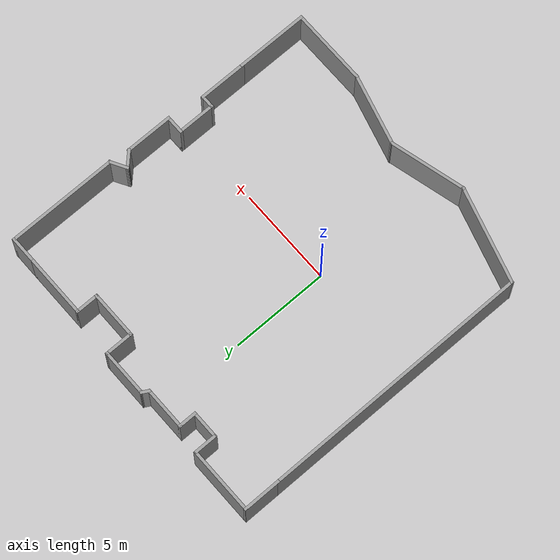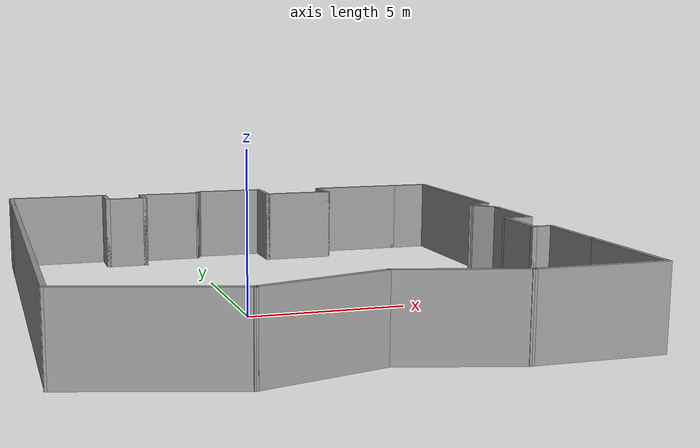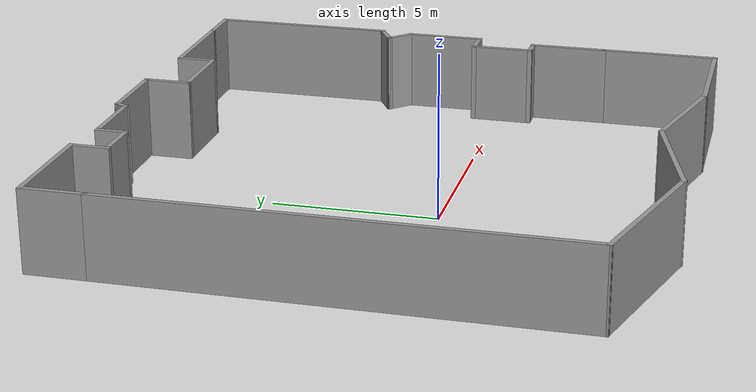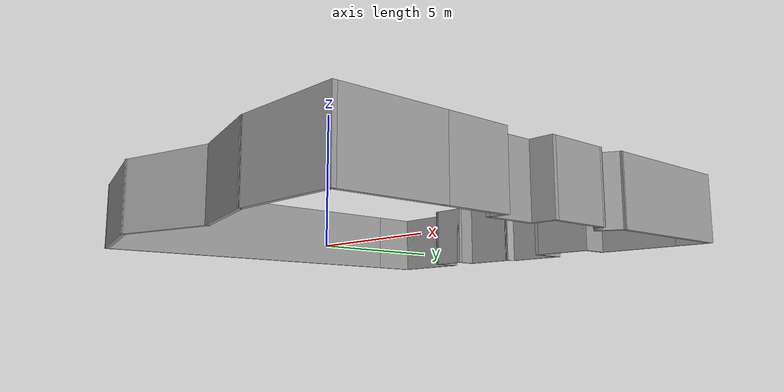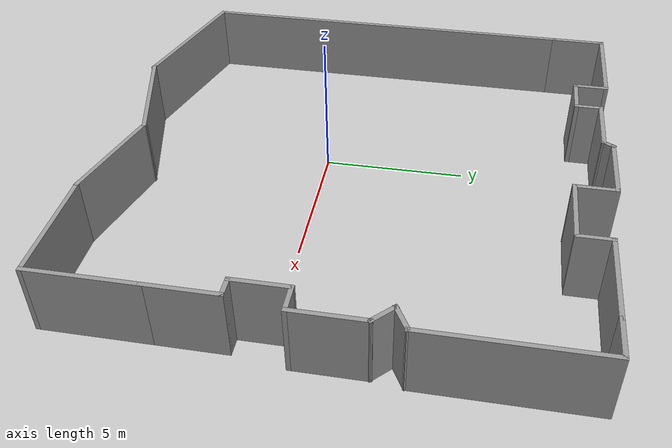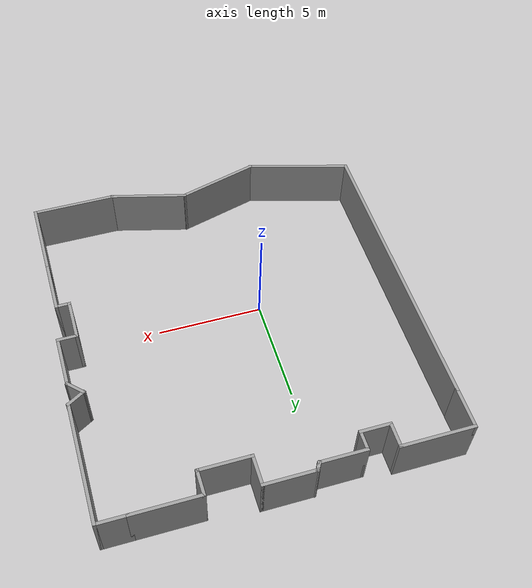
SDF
<?xml version='1.0'?>
<sdf version='1.6'>
  <model name='workplace'>
    <pose frame=''>1.75556 1.47465 0 0 -0 0</pose>
    <link name='Wall_36'>
      <collision name='Wall_36_Collision'>
        <geometry>
          <box>
            <size>14 0.15 2.5</size>
          </box>
        </geometry>
        <pose frame=''>0 0 1.25 0 -0 0</pose>
      </collision>
      <visual name='Wall_36_Visual'>
        <pose frame=''>0 0 1.25 0 -0 0</pose>
        <geometry>
          <box>
            <size>14 0.15 2.5</size>
          </box>
        </geometry>
        <material>
          <script>
            <uri>file://media/materials/scripts/gazebo.material</uri>
            <name>Gazebo/Grey</name>
          </script>
          <ambient>1 1 1 1</ambient>
        </material>
        <meta>
          <layer>0</layer>
        </meta>
      </visual>
      <pose frame=''>-8.06738 -0.28762 0 0 -0 1.5708</pose>
    </link>
    <link name='Wall_37'>
      <collision name='Wall_37_Collision'>
        <geometry>
          <box>
            <size>2 0.15 2.5</size>
          </box>
        </geometry>
        <pose frame=''>0 0 1.25 0 -0 0</pose>
      </collision>
      <visual name='Wall_37_Visual'>
        <pose frame=''>0 0 1.25 0 -0 0</pose>
        <geometry>
          <box>
            <size>2 0.15 2.5</size>
          </box>
        </geometry>
        <material>
          <script>
            <uri>file://media/materials/scripts/gazebo.material</uri>
            <name>Gazebo/Grey</name>
          </script>
          <ambient>1 1 1 1</ambient>
        </material>
        <meta>
          <layer>0</layer>
        </meta>
      </visual>
      <pose frame=''>-8.06738 7.56238 0 0 -0 1.5708</pose>
    </link>
    <link name='Wall_38'>
      <collision name='Wall_38_Collision'>
        <geometry>
          <box>
            <size>3.5 0.15 2.5</size>
          </box>
        </geometry>
        <pose frame=''>0 0 1.25 0 -0 0</pose>
      </collision>
      <visual name='Wall_38_Visual'>
        <pose frame=''>0 0 1.25 0 -0 0</pose>
        <geometry>
          <box>
            <size>3.5 0.15 2.5</size>
          </box>
        </geometry>
        <material>
          <script>
            <uri>file://media/materials/scripts/gazebo.material</uri>
            <name>Gazebo/Grey</name>
          </script>
          <ambient>1 1 1 1</ambient>
        </material>
        <meta>
          <layer>0</layer>
        </meta>
      </visual>
      <pose frame=''>-6.39238 8.48738 0 0 -0 0</pose>
    </link>
    <link name='Wall_39'>
      <collision name='Wall_39_Collision'>
        <geometry>
          <box>
            <size>1.25 0.15 2.5</size>
          </box>
        </geometry>
        <pose frame=''>0 0 1.25 0 -0 0</pose>
      </collision>
      <visual name='Wall_39_Visual'>
        <pose frame=''>0 0 1.25 0 -0 0</pose>
        <geometry>
          <box>
            <size>1.25 0.15 2.5</size>
          </box>
        </geometry>
        <material>
          <script>
            <uri>file://media/materials/scripts/gazebo.material</uri>
            <name>Gazebo/Grey</name>
          </script>
          <ambient>1 1 1 1</ambient>
        </material>
        <meta>
          <layer>0</layer>
        </meta>
      </visual>
      <pose frame=''>-4.71739 7.93738 0 0 -0 -1.5708</pose>
    </link>
    <link name='Wall_40'>
      <collision name='Wall_40_Collision'>
        <geometry>
          <box>
            <size>1.5 0.15 2.5</size>
          </box>
        </geometry>
        <pose frame=''>0 0 1.25 0 -0 0</pose>
      </collision>
      <visual name='Wall_40_Visual'>
        <pose frame=''>0 0 1.25 0 -0 0</pose>
        <geometry>
          <box>
            <size>1.5 0.15 2.5</size>
          </box>
        </geometry>
        <material>
          <script>
            <uri>file://media/materials/scripts/gazebo.material</uri>
            <name>Gazebo/Grey</name>
          </script>
          <ambient>1 1 1 1</ambient>
        </material>
        <meta>
          <layer>0</layer>
        </meta>
      </visual>
      <pose frame=''>-4.04238 7.38738 0 0 -0 0</pose>
    </link>
    <link name='Wall_41'>
      <collision name='Wall_41_Collision'>
        <geometry>
          <box>
            <size>1 0.15 2.5</size>
          </box>
        </geometry>
        <pose frame=''>0 0 1.25 0 -0 0</pose>
      </collision>
      <visual name='Wall_41_Visual'>
        <pose frame=''>0 0 1.25 0 -0 0</pose>
        <geometry>
          <box>
            <size>1 0.15 2.5</size>
          </box>
        </geometry>
        <material>
          <script>
            <uri>file://media/materials/scripts/gazebo.material</uri>
            <name>Gazebo/Grey</name>
          </script>
          <ambient>1 1 1 1</ambient>
        </material>
        <meta>
          <layer>0</layer>
        </meta>
      </visual>
      <pose frame=''>-3.36739 7.81238 0 0 -0 1.5708</pose>
    </link>
    <link name='Wall_42'>
      <collision name='Wall_42_Collision'>
        <geometry>
          <box>
            <size>2.25 0.15 2.5</size>
          </box>
        </geometry>
        <pose frame=''>0 0 1.25 0 -0 0</pose>
      </collision>
      <visual name='Wall_42_Visual'>
        <pose frame=''>0 0 1.25 0 -0 0</pose>
        <geometry>
          <box>
            <size>2.25 0.15 2.5</size>
          </box>
        </geometry>
        <material>
          <script>
            <uri>file://media/materials/scripts/gazebo.material</uri>
            <name>Gazebo/Grey</name>
          </script>
          <ambient>1 1 1 1</ambient>
        </material>
        <meta>
          <layer>0</layer>
        </meta>
      </visual>
      <pose frame=''>-2.31738 8.23738 0 0 -0 0</pose>
    </link>
    <link name='Wall_43'>
      <collision name='Wall_43_Collision'>
        <geometry>
          <box>
            <size>0.5 0.15 2.5</size>
          </box>
        </geometry>
        <pose frame=''>0 0 1.25 0 -0 0</pose>
      </collision>
      <visual name='Wall_43_Visual'>
        <pose frame=''>0 0 1.25 0 -0 0</pose>
        <geometry>
          <box>
            <size>0.5 0.15 2.5</size>
          </box>
        </geometry>
        <material>
          <script>
            <uri>file://media/materials/scripts/gazebo.material</uri>
            <name>Gazebo/Grey</name>
          </script>
          <ambient>1 1 1 1</ambient>
        </material>
        <meta>
          <layer>0</layer>
        </meta>
      </visual>
      <pose frame=''>-1.17988 8.38893 0 0 -0 1.0472</pose>
    </link>
    <link name='Wall_44'>
      <collision name='Wall_44_Collision'>
        <geometry>
          <box>
            <size>2.5 0.15 2.5</size>
          </box>
        </geometry>
        <pose frame=''>0 0 1.25 0 -0 0</pose>
      </collision>
      <visual name='Wall_44_Visual'>
        <pose frame=''>0 0 1.25 0 -0 0</pose>
        <geometry>
          <box>
            <size>2.5 0.15 2.5</size>
          </box>
        </geometry>
        <material>
          <script>
            <uri>file://media/materials/scripts/gazebo.material</uri>
            <name>Gazebo/Grey</name>
          </script>
          <ambient>1 1 1 1</ambient>
        </material>
        <meta>
          <layer>0</layer>
        </meta>
      </visual>
      <pose frame=''>0.082615 8.54049 0 0 -0 0</pose>
    </link>
    <link name='Wall_45'>
      <collision name='Wall_45_Collision'>
        <geometry>
          <box>
            <size>1.5 0.15 2.5</size>
          </box>
        </geometry>
        <pose frame=''>0 0 1.25 0 -0 0</pose>
      </collision>
      <visual name='Wall_45_Visual'>
        <pose frame=''>0 0 1.25 0 -0 0</pose>
        <geometry>
          <box>
            <size>1.5 0.15 2.5</size>
          </box>
        </geometry>
        <material>
          <script>
            <uri>file://media/materials/scripts/gazebo.material</uri>
            <name>Gazebo/Grey</name>
          </script>
          <ambient>1 1 1 1</ambient>
        </material>
        <meta>
          <layer>0</layer>
        </meta>
      </visual>
      <pose frame=''>1.25762 7.86549 0 0 -0 -1.5708</pose>
    </link>
    <link name='Wall_46'>
      <collision name='Wall_46_Collision'>
        <geometry>
          <box>
            <size>2.5 0.15 2.5</size>
          </box>
        </geometry>
        <pose frame=''>0 0 1.25 0 -0 0</pose>
      </collision>
      <visual name='Wall_46_Visual'>
        <pose frame=''>0 0 1.25 0 -0 0</pose>
        <geometry>
          <box>
            <size>2.5 0.15 2.5</size>
          </box>
        </geometry>
        <material>
          <script>
            <uri>file://media/materials/scripts/gazebo.material</uri>
            <name>Gazebo/Grey</name>
          </script>
          <ambient>1 1 1 1</ambient>
        </material>
        <meta>
          <layer>0</layer>
        </meta>
      </visual>
      <pose frame=''>2.43262 7.19049 0 0 -0 0</pose>
    </link>
    <link name='Wall_47'>
      <collision name='Wall_47_Collision'>
        <geometry>
          <box>
            <size>1.25 0.15 2.5</size>
          </box>
        </geometry>
        <pose frame=''>0 0 1.25 0 -0 0</pose>
      </collision>
      <visual name='Wall_47_Visual'>
        <pose frame=''>0 0 1.25 0 -0 0</pose>
        <geometry>
          <box>
            <size>1.25 0.15 2.5</size>
          </box>
        </geometry>
        <material>
          <script>
            <uri>file://media/materials/scripts/gazebo.material</uri>
            <name>Gazebo/Grey</name>
          </script>
          <ambient>1 1 1 1</ambient>
        </material>
        <meta>
          <layer>0</layer>
        </meta>
      </visual>
      <pose frame=''>3.60762 7.74049 0 0 -0 1.5708</pose>
    </link>
    <link name='Wall_48'>
      <collision name='Wall_48_Collision'>
        <geometry>
          <box>
            <size>3.25 0.15 2.5</size>
          </box>
        </geometry>
        <pose frame=''>0 0 1.25 0 -0 0</pose>
      </collision>
      <visual name='Wall_48_Visual'>
        <pose frame=''>0 0 1.25 0 -0 0</pose>
        <geometry>
          <box>
            <size>3.25 0.15 2.5</size>
          </box>
        </geometry>
        <material>
          <script>
            <uri>file://media/materials/scripts/gazebo.material</uri>
            <name>Gazebo/Grey</name>
          </script>
          <ambient>1 1 1 1</ambient>
        </material>
        <meta>
          <layer>0</layer>
        </meta>
      </visual>
      <pose frame=''>5.15762 8.29049 0 0 -0 0</pose>
    </link>
    <link name='Wall_49'>
      <collision name='Wall_49_Collision'>
        <geometry>
          <box>
            <size>1.5 0.15 2.5</size>
          </box>
        </geometry>
        <pose frame=''>0 0 1.25 0 -0 0</pose>
      </collision>
      <visual name='Wall_49_Visual'>
        <pose frame=''>0 0 1.25 0 -0 0</pose>
        <geometry>
          <box>
            <size>1.5 0.15 2.5</size>
          </box>
        </geometry>
        <material>
          <script>
            <uri>file://media/materials/scripts/gazebo.material</uri>
            <name>Gazebo/Grey</name>
          </script>
          <ambient>1 1 1 1</ambient>
        </material>
        <meta>
          <layer>0</layer>
        </meta>
      </visual>
      <pose frame=''>7.38262 8.29049 0 0 -0 0</pose>
    </link>
    <link name='Wall_50'>
      <collision name='Wall_50_Collision'>
        <geometry>
          <box>
            <size>5.75 0.15 2.5</size>
          </box>
        </geometry>
        <pose frame=''>0 0 1.25 0 -0 0</pose>
      </collision>
      <visual name='Wall_50_Visual'>
        <pose frame=''>0 0 1.25 0 -0 0</pose>
        <geometry>
          <box>
            <size>5.75 0.15 2.5</size>
          </box>
        </geometry>
        <material>
          <script>
            <uri>file://media/materials/scripts/gazebo.material</uri>
            <name>Gazebo/Grey</name>
          </script>
          <ambient>1 1 1 1</ambient>
        </material>
        <meta>
          <layer>0</layer>
        </meta>
      </visual>
      <pose frame=''>8.05762 5.49049 0 0 -0 -1.5708</pose>
    </link>
    <link name='Wall_51'>
      <collision name='Wall_51_Collision'>
        <geometry>
          <box>
            <size>1 0.15 2.5</size>
          </box>
        </geometry>
        <pose frame=''>0 0 1.25 0 -0 0</pose>
      </collision>
      <visual name='Wall_51_Visual'>
        <pose frame=''>0 0 1.25 0 -0 0</pose>
        <geometry>
          <box>
            <size>1 0.15 2.5</size>
          </box>
        </geometry>
        <material>
          <script>
            <uri>file://media/materials/scripts/gazebo.material</uri>
            <name>Gazebo/Grey</name>
          </script>
          <ambient>1 1 1 1</ambient>
        </material>
        <meta>
          <layer>0</layer>
        </meta>
      </visual>
      <pose frame=''>7.68956 2.47799 0 0 -0 -2.61799</pose>
    </link>
    <link name='Wall_52'>
      <collision name='Wall_52_Collision'>
        <geometry>
          <box>
            <size>1 0.15 2.5</size>
          </box>
        </geometry>
        <pose frame=''>0 0 1.25 0 -0 0</pose>
      </collision>
      <visual name='Wall_52_Visual'>
        <pose frame=''>0 0 1.25 0 -0 0</pose>
        <geometry>
          <box>
            <size>1 0.15 2.5</size>
          </box>
        </geometry>
        <material>
          <script>
            <uri>file://media/materials/scripts/gazebo.material</uri>
            <name>Gazebo/Grey</name>
          </script>
          <ambient>1 1 1 1</ambient>
        </material>
        <meta>
          <layer>0</layer>
        </meta>
      </visual>
      <pose frame=''>7.62202 1.96497 0 0 -0 -0.785398</pose>
    </link>
    <link name='Wall_53'>
      <collision name='Wall_53_Collision'>
        <geometry>
          <box>
            <size>2.5 0.15 2.5</size>
          </box>
        </geometry>
        <pose frame=''>0 0 1.25 0 -0 0</pose>
      </collision>
      <visual name='Wall_53_Visual'>
        <pose frame=''>0 0 1.25 0 -0 0</pose>
        <geometry>
          <box>
            <size>2.5 0.15 2.5</size>
          </box>
        </geometry>
        <material>
          <script>
            <uri>file://media/materials/scripts/gazebo.material</uri>
            <name>Gazebo/Grey</name>
          </script>
          <ambient>1 1 1 1</ambient>
        </material>
        <meta>
          <layer>0</layer>
        </meta>
      </visual>
      <pose frame=''>7.92253 0.489448 0 0 -0 -1.5708</pose>
    </link>
    <link name='Wall_54'>
      <collision name='Wall_54_Collision'>
        <geometry>
          <box>
            <size>1 0.15 2.5</size>
          </box>
        </geometry>
        <pose frame=''>0 0 1.25 0 -0 0</pose>
      </collision>
      <visual name='Wall_54_Visual'>
        <pose frame=''>0 0 1.25 0 -0 0</pose>
        <geometry>
          <box>
            <size>1 0.15 2.5</size>
          </box>
        </geometry>
        <material>
          <script>
            <uri>file://media/materials/scripts/gazebo.material</uri>
            <name>Gazebo/Grey</name>
          </script>
          <ambient>1 1 1 1</ambient>
        </material>
        <meta>
          <layer>0</layer>
        </meta>
      </visual>
      <pose frame=''>7.49753 -0.685552 0 0 -0 3.14159</pose>
    </link>
    <link name='Wall_55'>
      <collision name='Wall_55_Collision'>
        <geometry>
          <box>
            <size>2 0.15 2.5</size>
          </box>
        </geometry>
        <pose frame=''>0 0 1.25 0 -0 0</pose>
      </collision>
      <visual name='Wall_55_Visual'>
        <pose frame=''>0 0 1.25 0 -0 0</pose>
        <geometry>
          <box>
            <size>2 0.15 2.5</size>
          </box>
        </geometry>
        <material>
          <script>
            <uri>file://media/materials/scripts/gazebo.material</uri>
            <name>Gazebo/Grey</name>
          </script>
          <ambient>1 1 1 1</ambient>
        </material>
        <meta>
          <layer>0</layer>
        </meta>
      </visual>
      <pose frame=''>7.07254 -1.61055 0 0 -0 -1.5708</pose>
    </link>
    <link name='Wall_56'>
      <collision name='Wall_56_Collision'>
        <geometry>
          <box>
            <size>0.75 0.15 2.5</size>
          </box>
        </geometry>
        <pose frame=''>0 0 1.25 0 -0 0</pose>
      </collision>
      <visual name='Wall_56_Visual'>
        <pose frame=''>0 0 1.25 0 -0 0</pose>
        <geometry>
          <box>
            <size>0.75 0.15 2.5</size>
          </box>
        </geometry>
        <material>
          <script>
            <uri>file://media/materials/scripts/gazebo.material</uri>
            <name>Gazebo/Grey</name>
          </script>
          <ambient>1 1 1 1</ambient>
        </material>
        <meta>
          <layer>0</layer>
        </meta>
      </visual>
      <pose frame=''>7.37253 -2.53555 0 0 -0 0</pose>
    </link>
    <link name='Wall_57'>
      <collision name='Wall_57_Collision'>
        <geometry>
          <box>
            <size>2.5 0.15 2.5</size>
          </box>
        </geometry>
        <pose frame=''>0 0 1.25 0 -0 0</pose>
      </collision>
      <visual name='Wall_57_Visual'>
        <pose frame=''>0 0 1.25 0 -0 0</pose>
        <geometry>
          <box>
            <size>2.5 0.15 2.5</size>
          </box>
        </geometry>
        <material>
          <script>
            <uri>file://media/materials/scripts/gazebo.material</uri>
            <name>Gazebo/Grey</name>
          </script>
          <ambient>1 1 1 1</ambient>
        </material>
        <meta>
          <layer>0</layer>
        </meta>
      </visual>
      <pose frame=''>7.67253 -3.71055 0 0 -0 -1.5708</pose>
    </link>
    <link name='Wall_58'>
      <collision name='Wall_58_Collision'>
        <geometry>
          <box>
            <size>3.75 0.15 2.5</size>
          </box>
        </geometry>
        <pose frame=''>0 0 1.25 0 -0 0</pose>
      </collision>
      <visual name='Wall_58_Visual'>
        <pose frame=''>0 0 1.25 0 -0 0</pose>
        <geometry>
          <box>
            <size>3.75 0.15 2.5</size>
          </box>
        </geometry>
        <material>
          <script>
            <uri>file://media/materials/scripts/gazebo.material</uri>
            <name>Gazebo/Grey</name>
          </script>
          <ambient>1 1 1 1</ambient>
        </material>
        <meta>
          <layer>0</layer>
        </meta>
      </visual>
      <pose frame=''>7.67253 -6.68555 0 0 -0 -1.5708</pose>
    </link>
    <link name='Wall_59'>
      <collision name='Wall_59_Collision'>
        <geometry>
          <box>
            <size>4 0.15 2.5</size>
          </box>
        </geometry>
        <pose frame=''>0 0 1.25 0 -0 0</pose>
      </collision>
      <visual name='Wall_59_Visual'>
        <pose frame=''>0 0 1.25 0 -0 0</pose>
        <geometry>
          <box>
            <size>4 0.15 2.5</size>
          </box>
        </geometry>
        <material>
          <script>
            <uri>file://media/materials/scripts/gazebo.material</uri>
            <name>Gazebo/Grey</name>
          </script>
          <ambient>1 1 1 1</ambient>
        </material>
        <meta>
          <layer>0</layer>
        </meta>
      </visual>
      <pose frame=''>5.74754 -8.48555 0 0 -0 3.14159</pose>
    </link>
    <link name='Wall_60'>
      <collision name='Wall_60_Collision'>
        <geometry>
          <box>
            <size>3.75 0.15 2.5</size>
          </box>
        </geometry>
        <pose frame=''>0 0 1.25 0 -0 0</pose>
      </collision>
      <visual name='Wall_60_Visual'>
        <pose frame=''>0 0 1.25 0 -0 0</pose>
        <geometry>
          <box>
            <size>3.75 0.15 2.5</size>
          </box>
        </geometry>
        <material>
          <script>
            <uri>file://media/materials/scripts/gazebo.material</uri>
            <name>Gazebo/Grey</name>
          </script>
          <ambient>1 1 1 1</ambient>
        </material>
        <meta>
          <layer>0</layer>
        </meta>
      </visual>
      <pose frame=''>2.08387 -8.01968 0 0 -0 2.87979</pose>
    </link>
    <link name='Wall_61'>
      <collision name='Wall_61_Collision'>
        <geometry>
          <box>
            <size>4 0.15 2.5</size>
          </box>
        </geometry>
        <pose frame=''>0 0 1.25 0 -0 0</pose>
      </collision>
      <visual name='Wall_61_Visual'>
        <pose frame=''>0 0 1.25 0 -0 0</pose>
        <geometry>
          <box>
            <size>4 0.15 2.5</size>
          </box>
        </geometry>
        <material>
          <script>
            <uri>file://media/materials/scripts/gazebo.material</uri>
            <name>Gazebo/Grey</name>
          </script>
          <ambient>1 1 1 1</ambient>
        </material>
        <meta>
          <layer>0</layer>
        </meta>
      </visual>
      <pose frame=''>-1.51421 -8.05203 0 0 -0 -2.87979</pose>
    </link>
    <link name='Wall_62'>
      <collision name='Wall_62_Collision'>
        <geometry>
          <box>
            <size>5.03065 0.15 2.5</size>
          </box>
        </geometry>
        <pose frame=''>0 0 1.25 0 -0 0</pose>
      </collision>
      <visual name='Wall_62_Visual'>
        <pose frame=''>0 0 1.25 0 -0 0</pose>
        <geometry>
          <box>
            <size>5.03065 0.15 2.5</size>
          </box>
        </geometry>
        <material>
          <script>
            <uri>file://media/materials/scripts/gazebo.material</uri>
            <name>Gazebo/Grey</name>
          </script>
          <ambient>1 1 1 1</ambient>
        </material>
        <meta>
          <layer>0</layer>
        </meta>
      </visual>
      <pose frame=''>-5.7205 -7.88144 0 0 -0 2.86397</pose>
    </link>
    <static>1</static>
  </model>
</sdf>
